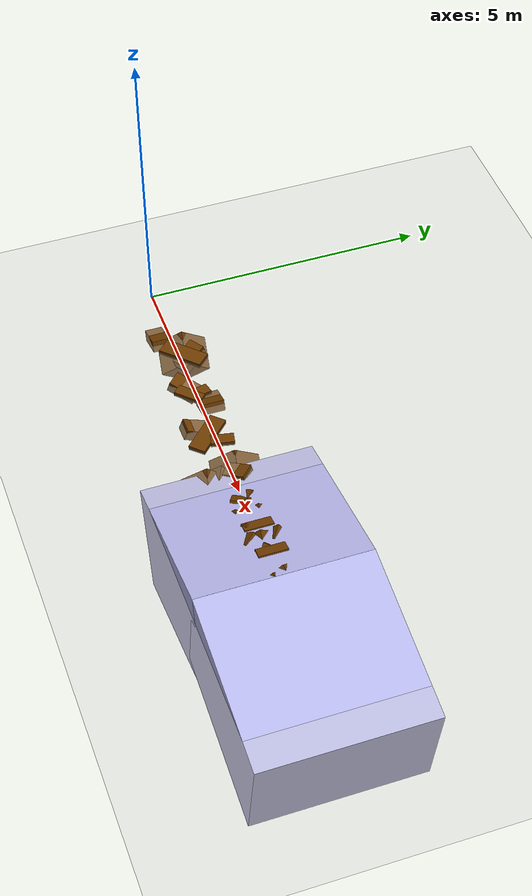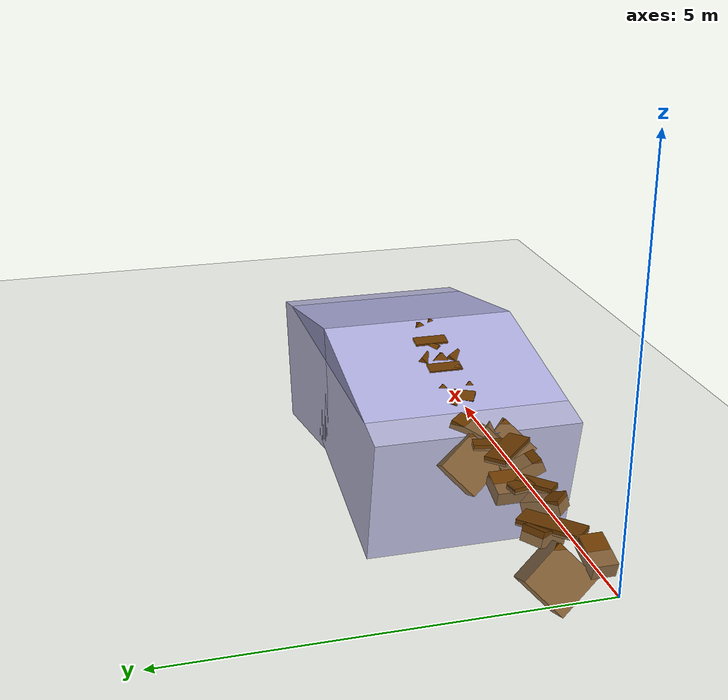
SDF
<?xml version="1.0" ?>
<sdf version="1.5">
    <world name="default">

        <physics type="ode">
        <max_step_size>0.001</max_step_size>
        <real_time_factor>1</real_time_factor>
        <real_time_update_rate>1000</real_time_update_rate>
        <gravity>0 0 -9.8</gravity>
            <ode>
                <solver>
                <type>quick</type>
                <iters>50</iters>
                <sor>1.3</sor>
                </solver>
                <constraints>
                <cfm>0.0</cfm>
                <erp>0.2</erp>
                <contact_max_correcting_vel>10.0</contact_max_correcting_vel>
                <contact_surface_layer>0.001</contact_surface_layer>
                </constraints>
            </ode>
        </physics>

        <scene>
        <sky>
            <clouds>
                <speed>12</speed>
            </clouds>
        </sky>
        </scene>
        <!-- A global light source -->
        <include>
            <uri>model://sun</uri>
        </include>
        <!-- A ground plane -->
        <include>
            <uri>model://ground_plane</uri>
        </include>
        <!-- environment blocks, obstacles or stairs -->
        <model name="static_environment">
        <static>true</static>
            <link name="static_box2">
                <pose>8.54 0 -0.8 0 0.2 0</pose>
                <collision name="static_bo2x_collision">
                    <geometry>
                        <box>
                            <size>3 3 2</size>
                        </box>
                    </geometry>
                    <surface>
                        <friction>
                            <ode>
                                <mu>50</mu>
                                <mu2>50</mu2>
                            </ode>
                        </friction>
                    </surface>
                </collision>
                <visual name="static_box2_visual">
                    <geometry>
                        <box>
                            <size>3 3 2</size>
                        </box>
                    </geometry>
                    <material>
                        <ambient>0.2 0.2 0.2 1.0</ambient>
                        <diffuse>0.7 0.7 0.9 1.0</diffuse>
                    </material>
                </visual>
            </link>
             <link name="static_box">
                <pose>6 0 -0.8 0 -0.2 0</pose>
                <collision name="static_box_collision">
                    <geometry>
                        <box>
                            <size>3 3 2</size>
                        </box>
                    </geometry>
                    <surface>
                        <friction>
                            <ode>
                                <mu>50</mu>
                                <mu2>50</mu2>
                            </ode>
                        </friction>
                    </surface>
                </collision>
                <visual name="static_box_visual">
                    <geometry>
                        <box>
                            <size>3 3 2</size>
                        </box>
                    </geometry>
                    <material>
                        <ambient>0.2 0.2 0.2 1.0</ambient>
                        <diffuse>0.7 0.7 0.9 1.0</diffuse>
                    </material>
                </visual>
            </link>
            <link name="ob1">
                <pose>2.8 0.2 -0.1 0 -0.3 0</pose>
                <collision name="ob1_collision">
                    <geometry>
                        <box>
                            <size>0.4 0.4 0.2</size>
                        </box>
                    </geometry>
                    <surface>
                        <friction>
                            <ode>
                                <mu>50</mu>
                                <mu2>50</mu2>
                            </ode>
                        </friction>
                    </surface>
                </collision>
                <visual name="static_box_visual">
                    <geometry>
                        <box>
                            <size>0.4 0.4 0.2</size>
                        </box>
                    </geometry>
                    <material>
                        <ambient>0.2 0.2 0.2 1.0</ambient>
                        <diffuse>.421 0.225 0.0 1.0</diffuse>
                    </material>
                </visual>
            </link>
            <link name="ob2">
                <pose>1 -0.2 -0.1 0 -0.3 0</pose>
                <collision name="ob2_collision">
                    <geometry>
                        <box>
                            <size>0.5 0.3 0.2</size>
                        </box>
                    </geometry>
                    <surface>
                        <friction>
                            <ode>
                                <mu>50</mu>
                                <mu2>50</mu2>
                            </ode>
                        </friction>
                    </surface>
                </collision>
                <visual name="static2_box_visual">
                    <geometry>
                        <box>
                            <size>0.5 0.3 0.2</size>
                        </box>
                    </geometry>
                    <material>
                        <ambient>0.2 0.2 0.2 1.0</ambient>
                        <diffuse>.421 0.225 0.0 1.0</diffuse>
                    </material>
                </visual>
            </link>
            <link name="ob3">
                <pose>1.6 0.2 -0.1 0 0.3 -1</pose>
                <collision name="ob3_collision">
                    <geometry>
                        <box>
                            <size>0.5 0.3 0.2</size>
                        </box>
                    </geometry>
                    <surface>
                        <friction>
                            <ode>
                                <mu>50</mu>
                                <mu2>50</mu2>
                            </ode>
                        </friction>
                    </surface>
                </collision>
                <visual name="static3_box_visual">
                    <geometry>
                        <box>
                            <size>0.5 0.3 0.2</size>
                        </box>
                    </geometry>
                    <material>
                        <ambient>0.2 0.2 0.2 1.0</ambient>
                        <diffuse>.421 0.225 0.0 1.0</diffuse>
                    </material>
                </visual>
            </link>
            <link name="ob4">
                <pose>2.3 -0.1 -0.12 0 0.3 0.8</pose>
                <collision name="ob4_collision">
                    <geometry>
                        <box>
                            <size>0.5 0.3 0.2</size>
                        </box>
                    </geometry>
                    <surface>
                        <friction>
                            <ode>
                                <mu>50</mu>
                                <mu2>50</mu2>
                            </ode>
                        </friction>
                    </surface>
                </collision>
                <visual name="static4_box_visual">
                    <geometry>
                        <box>
                            <size>0.5 0.3 0.2</size>
                        </box>
                    </geometry>
                    <material>
                        <ambient>0.2 0.2 0.2 1.0</ambient>
                        <diffuse>.421 0.225 0.0 1.0</diffuse>
                    </material>
                </visual>
            </link>
            <link name="ob5">
                <pose>3.6 -0.1 0 0 0 0.8</pose>
                <collision name="ob5_collision">
                    <geometry>
                        <box>
                            <size>0.3 0.8 0.08</size>
                        </box>
                    </geometry>
                    <surface>
                        <friction>
                            <ode>
                                <mu>50</mu>
                                <mu2>50</mu2>
                            </ode>
                        </friction>
                    </surface>
                </collision>
                <visual name="static_box_visual">
                    <geometry>
                        <box>
                            <size>0.3 0.8 0.08</size>
                        </box>
                    </geometry>
                    <material>
                        <ambient>0.2 0.2 0.2 1.0</ambient>
                        <diffuse>.421 0.225 0.0 1.0</diffuse>
                    </material>
                </visual>
            </link>
            <link name="ob6">
                <pose>1.6 0.1 0 0 0 -0.8</pose>
                <collision name="ob6_collision">
                    <geometry>
                        <box>
                            <size>0.3 0.8 0.08</size>
                        </box>
                    </geometry>
                    <surface>
                        <friction>
                            <ode>
                                <mu>50</mu>
                                <mu2>50</mu2>
                            </ode>
                        </friction>
                    </surface>
                </collision>
                <visual name="static_box_visual">
                    <geometry>
                        <box>
                            <size>0.3 0.8 0.08</size>
                        </box>
                    </geometry>
                    <material>
                        <ambient>0.2 0.2 0.2 1.0</ambient>
                        <diffuse>.421 0.225 0.0 1.0</diffuse>
                    </material>
                </visual>
            </link>
            <link name="ob7">
                <pose>2.6 -0.1 0 0 0 -0.8</pose>
                <collision name="ob7_collision">
                    <geometry>
                        <box>
                            <size>0.2 0.5 0.08</size>
                        </box>
                    </geometry>
                    <surface>
                        <friction>
                            <ode>
                                <mu>50</mu>
                                <mu2>50</mu2>
                            </ode>
                        </friction>
                    </surface>
                </collision>
                <visual name="static_box_visual">
                    <geometry>
                        <box>
                            <size>0.2 0.5 0.08</size>
                        </box>
                    </geometry>
                    <material>
                        <ambient>0.2 0.2 0.2 1.0</ambient>
                        <diffuse>.421 0.225 0.0 1.0</diffuse>
                    </material>
                </visual>
            </link>
             <link name="ob8">
                <pose>3.3 -0.2 -0.15 0 0.4 1.57</pose>
                <collision name="ob8_collision">
                    <geometry>
                        <box>
                            <size>0.5 0.3 0.2</size>
                        </box>
                    </geometry>
                    <surface>
                        <friction>
                            <ode>
                                <mu>50</mu>
                                <mu2>50</mu2>
                            </ode>
                        </friction>
                    </surface>
                </collision>
                <visual name="static8_box_visual">
                    <geometry>
                        <box>
                            <size>0.5 0.3 0.2</size>
                        </box>
                    </geometry>
                    <material>
                        <ambient>0.2 0.2 0.2 1.0</ambient>
                        <diffuse>.421 0.225 0.0 1.0</diffuse>
                    </material>
                </visual>
            </link>
            <link name="ob9">
                <pose>2.6 0.1 0 0 0 0.2</pose>
                <collision name="ob9_collision">
                    <geometry>
                        <box>
                            <size>0.2 0.3 0.08</size>
                        </box>
                    </geometry>
                    <surface>
                        <friction>
                            <ode>
                                <mu>50</mu>
                                <mu2>50</mu2>
                            </ode>
                        </friction>
                    </surface>
                </collision>
                <visual name="static_box_visual">
                    <geometry>
                        <box>
                            <size>0.2 0.3 0.08</size>
                        </box>
                    </geometry>
                    <material>
                        <ambient>0.2 0.2 0.2 1.0</ambient>
                        <diffuse>.421 0.225 0.0 1.0</diffuse>
                    </material>
                </visual>
            </link>
             <link name="ob11">
                <pose>3.8 0.1 0 0 0 -0.2</pose>
                <collision name="ob11_collision">
                    <geometry>
                        <box>
                            <size>0.2 0.4 0.08</size>
                        </box>
                    </geometry>
                    <surface>
                        <friction>
                            <ode>
                                <mu>50</mu>
                                <mu2>50</mu2>
                            </ode>
                        </friction>
                    </surface>
                </collision>
                <visual name="static_box_visual">
                    <geometry>
                        <box>
                            <size>0.2 0.4 0.08</size>
                        </box>
                    </geometry>
                    <material>
                        <ambient>0.2 0.2 0.2 1.0</ambient>
                        <diffuse>.421 0.225 0.0 1.0</diffuse>
                    </material>
                </visual>
            </link>
             <link name="ob13">
                <pose>4.5 0.1 -0.12 0 -0.3 0.8</pose>
                <collision name="ob13_collision">
                    <geometry>
                        <box>
                            <size>0.5 0.3 0.2</size>
                        </box>
                    </geometry>
                    <surface>
                        <friction>
                            <ode>
                                <mu>50</mu>
                                <mu2>50</mu2>
                            </ode>
                        </friction>
                    </surface>
                </collision>
                <visual name="static4_box_visual">
                    <geometry>
                        <box>
                            <size>0.5 0.3 0.2</size>
                        </box>
                    </geometry>
                    <material>
                        <ambient>0.2 0.2 0.2 1.0</ambient>
                        <diffuse>.421 0.225 0.0 1.0</diffuse>
                    </material>
                </visual>
            </link>

             <link name="ob14">
                <pose>6.5 0.1 0.12 0 -0.8 -0.8</pose>
                <collision name="ob13_collision">
                    <geometry>
                        <box>
                            <size>0.5 0.3 0.2</size>
                        </box>
                    </geometry>
                    <surface>
                        <friction>
                            <ode>
                                <mu>50</mu>
                                <mu2>50</mu2>
                            </ode>
                        </friction>
                    </surface>
                </collision>
                <visual name="static4_box_visual">
                    <geometry>
                        <box>
                            <size>0.5 0.3 0.2</size>
                        </box>
                    </geometry>
                    <material>
                        <ambient>0.2 0.2 0.2 1.0</ambient>
                        <diffuse>.421 0.225 0.0 1.0</diffuse>
                    </material>
                </visual>
            </link>
             <link name="ob15">
                <pose>6.3 -0.2 0.05 0 1 0.8</pose>
                <collision name="ob13_collision">
                    <geometry>
                        <box>
                            <size>0.5 0.3 0.2</size>
                        </box>
                    </geometry>
                    <surface>
                        <friction>
                            <ode>
                                <mu>50</mu>
                                <mu2>50</mu2>
                            </ode>
                        </friction>
                    </surface>
                </collision>
                <visual name="static4_box_visual">
                    <geometry>
                        <box>
                            <size>0.5 0.3 0.2</size>
                        </box>
                    </geometry>
                    <material>
                        <ambient>0.2 0.2 0.2 1.0</ambient>
                        <diffuse>.421 0.225 0.0 1.0</diffuse>
                    </material>
                </visual>
            </link>
             <link name="ob16">
                <pose>5.3 -0.1 -0.15 0 1.2 -0.5</pose>
                <collision name="ob13_collision">
                    <geometry>
                        <box>
                            <size>0.5 0.3 0.2</size>
                        </box>
                    </geometry>
                    <surface>
                        <friction>
                            <ode>
                                <mu>50</mu>
                                <mu2>50</mu2>
                            </ode>
                        </friction>
                    </surface>
                </collision>
                <visual name="static4_box_visual">
                    <geometry>
                        <box>
                            <size>0.5 0.3 0.2</size>
                        </box>
                    </geometry>
                    <material>
                        <ambient>0.2 0.2 0.2 1.0</ambient>
                        <diffuse>.421 0.225 0.0 1.0</diffuse>
                    </material>
                </visual>
            </link>
            <link name="ob17">
                <pose>5.2 0.1 -0.2 0 1.2 0.8</pose>
                <collision name="ob13_collision">
                    <geometry>
                        <box>
                            <size>0.5 0.3 0.2</size>
                        </box>
                    </geometry>
                    <surface>
                        <friction>
                            <ode>
                                <mu>50</mu>
                                <mu2>50</mu2>
                            </ode>
                        </friction>
                    </surface>
                </collision>
                <visual name="static4_box_visual">
                    <geometry>
                        <box>
                            <size>0.5 0.3 0.2</size>
                        </box>
                    </geometry>
                    <material>
                        <ambient>0.2 0.2 0.2 1.0</ambient>
                        <diffuse>.421 0.225 0.0 1.0</diffuse>
                    </material>
                </visual>
            </link>
             <link name="ob18">
                <pose>6.2 0.1 0.08 0 -0.7 1</pose>
                <collision name="ob13_collision">
                    <geometry>
                        <box>
                            <size>0.5 0.3 0.2</size>
                        </box>
                    </geometry>
                    <surface>
                        <friction>
                            <ode>
                                <mu>50</mu>
                                <mu2>50</mu2>
                            </ode>
                        </friction>
                    </surface>
                </collision>
                <visual name="static4_box_visual">
                    <geometry>
                        <box>
                            <size>0.5 0.3 0.2</size>
                        </box>
                    </geometry>
                    <material>
                        <ambient>0.2 0.2 0.2 1.0</ambient>
                        <diffuse>.421 0.225 0.0 1.0</diffuse>
                    </material>
                </visual>
            </link>
            <link name="ob19">
                <pose>4.5 -0.2 -0.4 0.2 -0.7 1</pose>
                <collision name="ob13_collision">
                    <geometry>
                        <box>
                            <size>0.5 0.5 0.5</size>
                        </box>
                    </geometry>
                    <surface>
                        <friction>
                            <ode>
                                <mu>50</mu>
                                <mu2>50</mu2>
                            </ode>
                        </friction>
                    </surface>
                </collision>
                <visual name="static4_box_visual">
                    <geometry>
                        <box>
                            <size>0.5 0.5 0.5</size>
                        </box>
                    </geometry>
                    <material>
                        <ambient>0.2 0.2 0.2 1.0</ambient>
                        <diffuse>.421 0.225 0.0 1.0</diffuse>
                    </material>
                </visual>
            </link>
            <link name="ob191">
                <pose>4.5 -0.4 -0.45 0.5 -0.7 1</pose>
                <collision name="ob13_collision">
                    <geometry>
                        <box>
                            <size>0.6 0.6 0.6</size>
                        </box>
                    </geometry>
                    <surface>
                        <friction>
                            <ode>
                                <mu>50</mu>
                                <mu2>50</mu2>
                            </ode>
                        </friction>
                    </surface>
                </collision>
                <visual name="static4_box_visual">
                    <geometry>
                        <box>
                            <size>0.6 0.6 0.6</size>
                        </box>
                    </geometry>
                    <material>
                        <ambient>0.2 0.2 0.2 1.0</ambient>
                        <diffuse>.421 0.225 0.0 1.0</diffuse>
                    </material>
                </visual>
            </link>
            <link name="ob20">
                <pose>4.2 0.2 -0.48 0.6 -0.7 1</pose>
                <collision name="ob13_collision">
                    <geometry>
                        <box>
                            <size>0.6 0.6 0.6</size>
                        </box>
                    </geometry>
                    <surface>
                        <friction>
                            <ode>
                                <mu>50</mu>
                                <mu2>50</mu2>
                            </ode>
                        </friction>
                    </surface>
                </collision>
                <visual name="static4_box_visual">
                    <geometry>
                        <box>
                            <size>0.6 0.6 0.6</size>
                        </box>
                    </geometry>
                    <material>
                        <ambient>0.2 0.2 0.2 1.0</ambient>
                        <diffuse>.421 0.225 0.0 1.0</diffuse>
                    </material>
                </visual>
            </link>
            <link name="ob21">
                <pose>1.2 0.2 -0.45 0.6 -0.7 1</pose>
                <collision name="ob13_collision">
                    <geometry>
                        <box>
                            <size>0.6 0.6 0.6</size>
                        </box>
                    </geometry>
                    <surface>
                        <friction>
                            <ode>
                                <mu>50</mu>
                                <mu2>50</mu2>
                            </ode>
                        </friction>
                    </surface>
                </collision>
                <visual name="static4_box_visual">
                    <geometry>
                        <box>
                            <size>0.6 0.6 0.6</size>
                        </box>
                    </geometry>
                    <material>
                        <ambient>0.2 0.2 0.2 1.0</ambient>
                        <diffuse>.421 0.225 0.0 1.0</diffuse>
                    </material>
                </visual>
            </link>
            <link name="ob22">
                <pose>6 -0.2 -0.24 0.6 -0.7 1</pose>
                <collision name="ob13_collision">
                    <geometry>
                        <box>
                            <size>0.6 0.6 0.6</size>
                        </box>
                    </geometry>
                    <surface>
                        <friction>
                            <ode>
                                <mu>50</mu>
                                <mu2>50</mu2>
                            </ode>
                        </friction>
                    </surface>
                </collision>
                <visual name="static4_box_visual">
                    <geometry>
                        <box>
                            <size>0.6 0.6 0.6</size>
                        </box>
                    </geometry>
                    <material>
                        <ambient>0.2 0.2 0.2 1.0</ambient>
                        <diffuse>.421 0.225 0.0 1.0</diffuse>
                    </material>
                </visual>
            </link>
            <link name="ob23">
                <pose>5.6 0.2 -0.34 0.6 -0.8 1</pose>
                <collision name="ob13_collision">
                    <geometry>
                        <box>
                            <size>0.6 0.6 0.6</size>
                        </box>
                    </geometry>
                    <surface>
                        <friction>
                            <ode>
                                <mu>50</mu>
                                <mu2>50</mu2>
                            </ode>
                        </friction>
                    </surface>
                </collision>
                <visual name="static4_box_visual">
                    <geometry>
                        <box>
                            <size>0.6 0.6 0.6</size>
                        </box>
                    </geometry>
                    <material>
                        <ambient>0.2 0.2 0.2 1.0</ambient>
                        <diffuse>.421 0.225 0.0 1.0</diffuse>
                    </material>
                </visual>
            </link>
            <link name="ob24">
                <pose>5.6 -0.2 -0.34 0.6 -0.8 1</pose>
                <collision name="ob13_collision">
                    <geometry>
                        <box>
                            <size>0.6 0.6 0.6</size>
                        </box>
                    </geometry>
                    <surface>
                        <friction>
                            <ode>
                                <mu>50</mu>
                                <mu2>50</mu2>
                            </ode>
                        </friction>
                    </surface>
                </collision>
                <visual name="static4_box_visual">
                    <geometry>
                        <box>
                            <size>0.6 0.6 0.6</size>
                        </box>
                    </geometry>
                    <material>
                        <ambient>0.2 0.2 0.2 1.0</ambient>
                        <diffuse>.421 0.225 0.0 1.0</diffuse>
                    </material>
                </visual>
            </link>

             <link name="obj25">
                <pose>6 0 -0.01 -0 -0.2 0</pose>
                <collision name="static_box_collision">
                    <geometry>
                        <box>
                            <size>0.2 0.5 0.5</size>
                        </box>
                    </geometry>
                    <surface>
                        <friction>
                            <ode>
                                <mu>50</mu>
                                <mu2>50</mu2>
                            </ode>
                        </friction>
                    </surface>
                </collision>
                <visual name="static_box_visual">
                    <geometry>
                        <box>
                            <size>0.2 0.5 0.5</size>
                        </box>
                    </geometry>
                    <material>
                        <ambient>0.2 0.2 0.2 1.0</ambient>
                        <diffuse>.421 0.225 0.0 1.0</diffuse>
                    </material>
                </visual>
            </link>

            <link name="ob25">
                <pose>6.3 0 -0.15 0.6 -0.8 1</pose>
                <collision name="ob13_collision">
                    <geometry>
                        <box>
                            <size>0.6 0.6 0.6</size>
                        </box>
                    </geometry>
                    <surface>
                        <friction>
                            <ode>
                                <mu>50</mu>
                                <mu2>50</mu2>
                            </ode>
                        </friction>
                    </surface>
                </collision>
                <visual name="static4_box_visual">
                    <geometry>
                        <box>
                            <size>0.6 0.6 0.6</size>
                        </box>
                    </geometry>
                    <material>
                        <ambient>0.2 0.2 0.2 1.0</ambient>
                        <diffuse>.421 0.225 0.0 1.0</diffuse>
                    </material>
                </visual>
            </link>

            <link name="ob26">
                <pose>5.4 0.1 -0.35 0.6 -0.8 1.4</pose>
                <collision name="ob13_collision">
                    <geometry>
                        <box>
                            <size>0.6 0.6 0.6</size>
                        </box>
                    </geometry>
                    <surface>
                        <friction>
                            <ode>
                                <mu>50</mu>
                                <mu2>50</mu2>
                            </ode>
                        </friction>
                    </surface>
                </collision>
                <visual name="static4_box_visual">
                    <geometry>
                        <box>
                            <size>0.6 0.6 0.6</size>
                        </box>
                    </geometry>
                    <material>
                        <ambient>0.2 0.2 0.2 1.0</ambient>
                        <diffuse>.421 0.225 0.0 1.0</diffuse>
                    </material>
                </visual>
            </link>

            <link name="ob27">
                <pose>7.3 -0.1 0 0.6 -0.8 1.4</pose>
                <collision name="ob13_collision">
                    <geometry>
                        <box>
                            <size>0.6 0.6 0.6</size>
                        </box>
                    </geometry>
                    <surface>
                        <friction>
                            <ode>
                                <mu>50</mu>
                                <mu2>50</mu2>
                            </ode>
                        </friction>
                    </surface>
                </collision>
                <visual name="static4_box_visual">
                    <geometry>
                        <box>
                            <size>0.6 0.6 0.6</size>
                        </box>
                    </geometry>
                    <material>
                        <ambient>0.2 0.2 0.2 1.0</ambient>
                        <diffuse>.421 0.225 0.0 1.0</diffuse>
                    </material>
                </visual>
            </link>

            <link name="ob28">
                <pose>7.2 0.1 0 0.6 -0.8 1.4</pose>
                <collision name="ob13_collision">
                    <geometry>
                        <box>
                            <size>0.6 0.6 0.6</size>
                        </box>
                    </geometry>
                    <surface>
                        <friction>
                            <ode>
                                <mu>50</mu>
                                <mu2>50</mu2>
                            </ode>
                        </friction>
                    </surface>
                </collision>
                <visual name="static4_box_visual">
                    <geometry>
                        <box>
                            <size>0.6 0.6 0.6</size>
                        </box>
                    </geometry>
                    <material>
                        <ambient>0.2 0.2 0.2 1.0</ambient>
                        <diffuse>.421 0.225 0.0 1.0</diffuse>
                    </material>
                </visual>
            </link>

             <link name="obj26">
                <pose>6.7 0 0.14 0 -0.2 0</pose>
                <collision name="static_box_collision">
                    <geometry>
                        <box>
                            <size>0.2 0.5 0.5</size>
                        </box>
                    </geometry>
                    <surface>
                        <friction>
                            <ode>
                                <mu>50</mu>
                                <mu2>50</mu2>
                            </ode>
                        </friction>
                    </surface>
                </collision>
                <visual name="static_box_visual">
                    <geometry>
                        <box>
                            <size>0.2 0.5 0.5</size>
                        </box>
                    </geometry>
                    <material>
                        <ambient>0.2 0.2 0.2 1.0</ambient>
                        <diffuse>.421 0.225 0.0 1.0</diffuse>
                    </material>
                </visual>
            </link>

        </model>

    </world>
</sdf>
